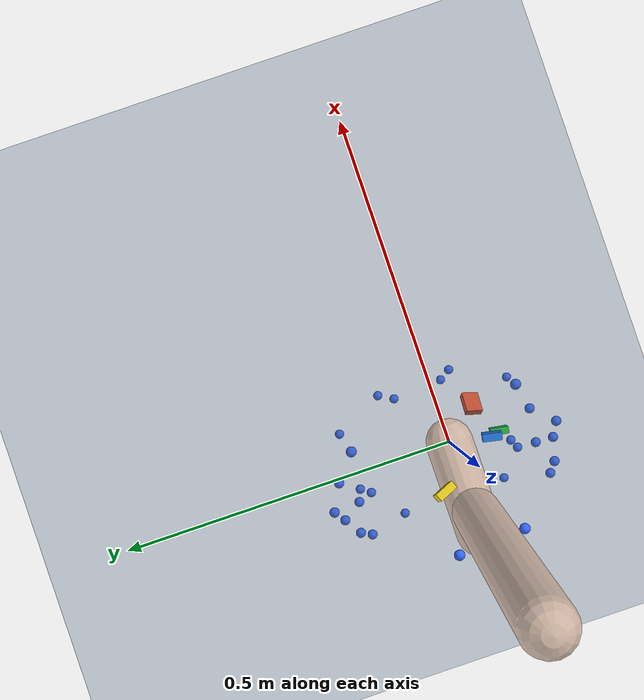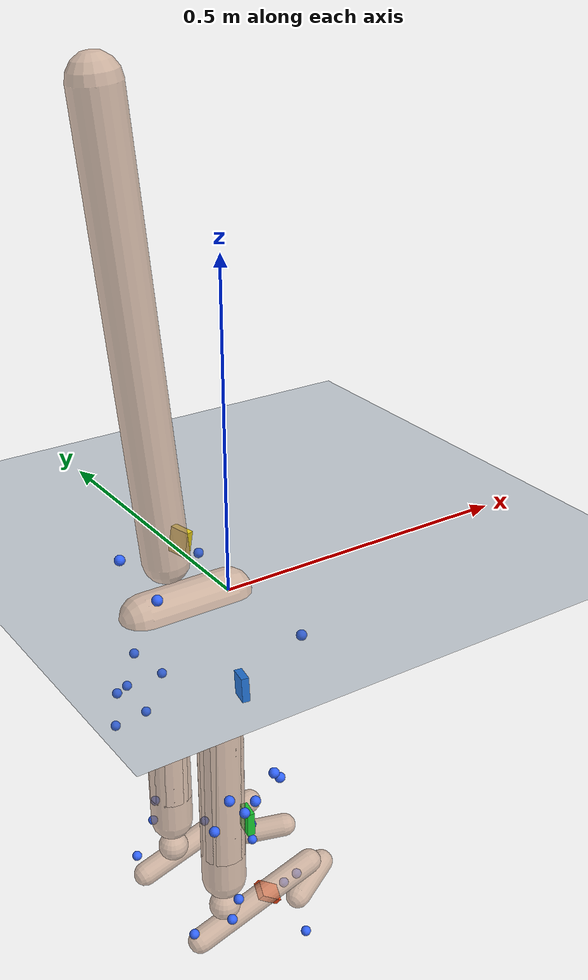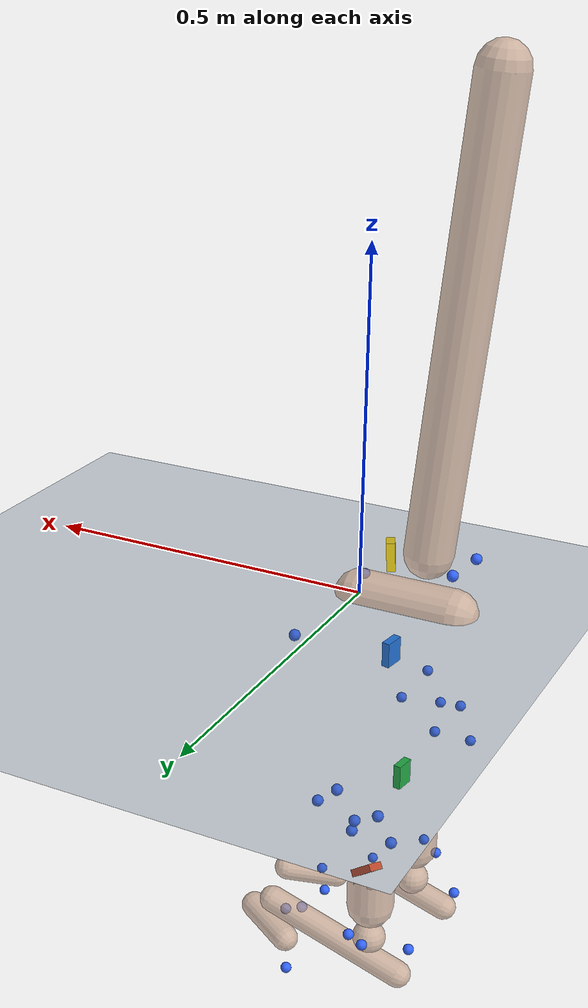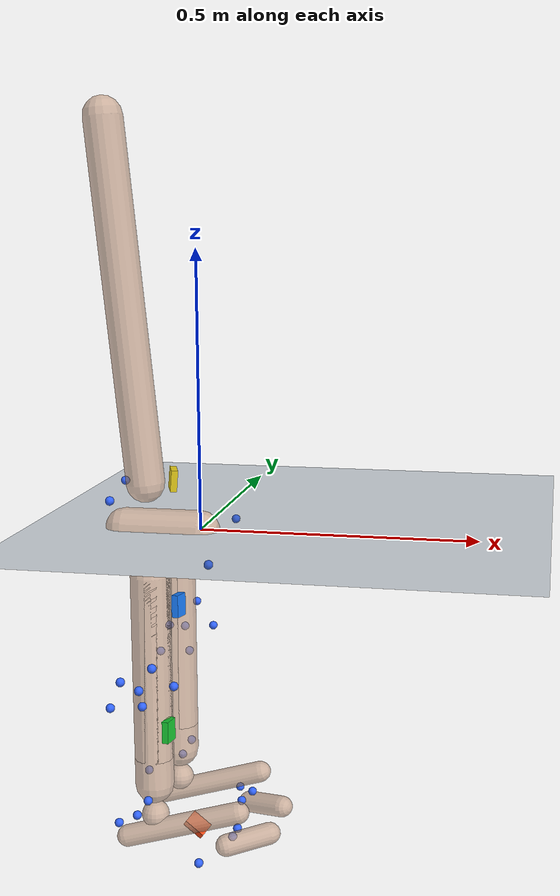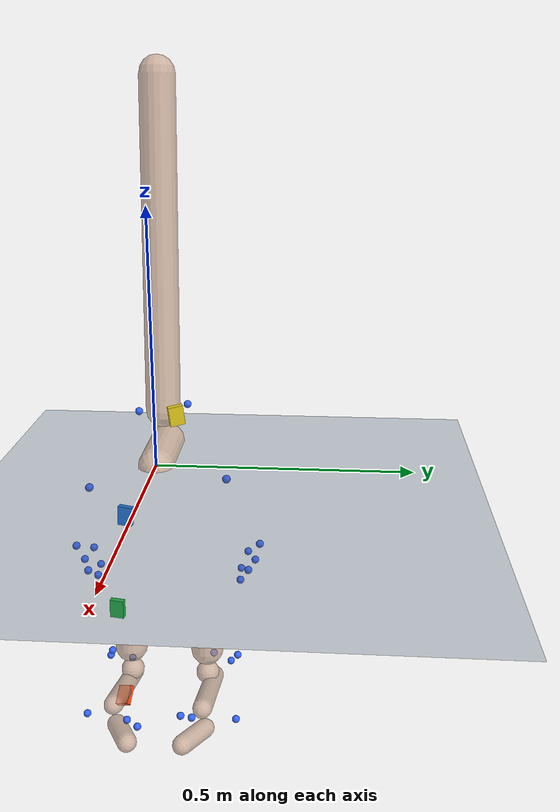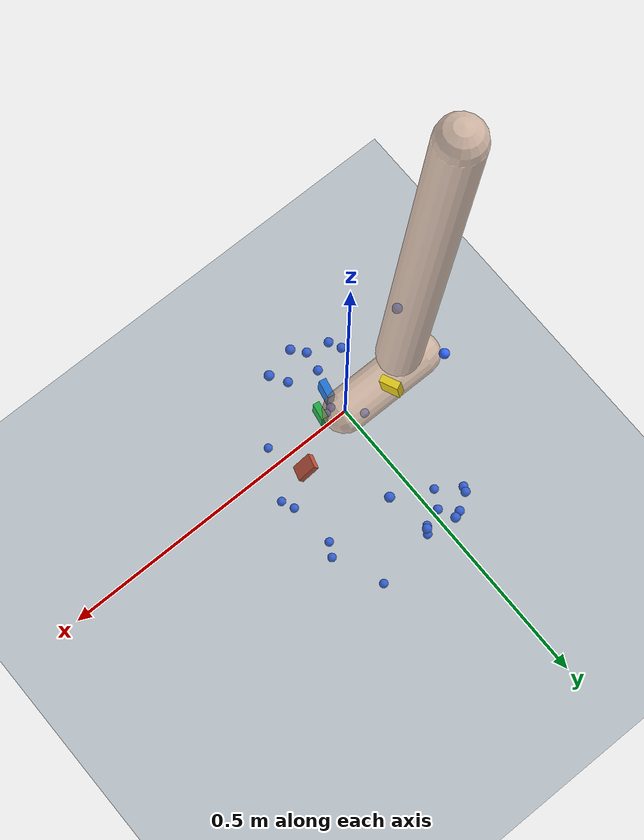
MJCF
<mujoco model="AB30">
  <compiler angle="radian" autolimits="true"/>
  <option timestep="0.005" gravity="0 0 -9.81"><flag contact="disable"/></option>
  <visual><global offwidth="1280" offheight="720"/></visual>
  <default><joint limited="false" damping="0"/><geom contype="0" conaffinity="0"/></default>
  <asset>
    <texture name="grid" type="2d" builtin="checker" rgb1="0.2 0.3 0.4" rgb2="0.3 0.4 0.5" width="512" height="512"/>
    <material name="grid" texture="grid" texrepeat="2 2" texuniform="true"/>
    <material name="skin" rgba="0.8 0.65 0.55 0.7"/>
  </asset>
  <worldbody>
    <light pos="0 0 4" dir="0 0 -1"/>
    <geom name="floor" type="plane" size="0 0 0.05" material="grid"/>
    <body name="pelvis" pos="0 0 0" quat="1 0 0 0">
      <joint name="pelvis_tx" type="slide" axis="1 0 0"/>
      <joint name="pelvis_ty" type="slide" axis="0 0 1"/>
      <joint name="pelvis_tz" type="slide" axis="0 -1 0"/>
      <joint name="pelvis_tilt" type="hinge" axis="0 -1 0"/>
      <joint name="pelvis_list" type="hinge" axis="1 0 0"/>
      <joint name="pelvis_rotation" type="hinge" axis="0 0 1"/>
      <inertial pos="-0.0707 0 0" mass="12.3721" diaginertia="0.12372142 0.12372142 0.12372142"/>
      <geom type="capsule" fromto="0 0 0 -0.1414 0 0" size="0.035" material="skin" mass="0"/>
      <site name="m_R_ASIS" pos="0.046712862 -0.12312792 -0.030536669" size="0.008" rgba="0.2 0.4 1 1" group="2"/>
      <site name="m_L_ASIS" pos="0.03146868 0.14170139 -0.011381091" size="0.008" rgba="0.2 0.4 1 1" group="2"/>
      <site name="m_L_PSIS" pos="-0.15218441 0.041935811 0.076667518" size="0.008" rgba="0.2 0.4 1 1" group="2"/>
      <site name="m_R_PSIS" pos="-0.14857951 -0.059881004 0.059781953" size="0.008" rgba="0.2 0.4 1 1" group="2"/>
      <body name="femur_r" pos="-0.0707 -0.0835 -0.0661" quat="1 0 0 0">
        <joint name="hip_flexion_r" type="hinge" axis="0 -1 0"/>
        <joint name="hip_adduction_r" type="hinge" axis="1 0 0"/>
        <joint name="hip_rotation_r" type="hinge" axis="0 0 1"/>
        <inertial pos="0 0 -0.17" mass="9.77144" diaginertia="0.097714393 0.097714393 0.097714393"/>
        <geom type="capsule" fromto="0 0 0 0 0 -0.34" size="0.035" material="skin" mass="0"/>
        <site name="m_R_Thigh_Upper" pos="0.030761534 -0.098886588 -0.13628925" size="0.008" rgba="0.2 0.4 1 1" group="2"/>
        <site name="m_R_Thigh_Front" pos="0.060171748 -0.06926147 -0.17684685" size="0.008" rgba="0.2 0.4 1 1" group="2"/>
        <site name="m_R_Thigh_Rear" pos="0.0036993026 -0.090592458 -0.18130729" size="0.008" rgba="0.2 0.4 1 1" group="2"/>
        <site name="m_R_Knee_Lat" pos="0.0002000624 -0.043292933 -0.40644097" size="0.008" rgba="0.2 0.4 1 1" group="2"/>
        <site name="imu_thigh" type="box" size="0.02 0.015 0.006" pos="0.04775006 0.012329851 -0.055042056" quat="0.71110272 0.050063465 0.6956812 -0.088624175" rgba="0.1 0.5 1 1" group="1"/>
        <body name="tibia_r" pos="0 0 0" quat="1 0 0 0">
          <joint name="knee_r_translation1" type="slide" axis="1 0 0"/>
          <joint name="knee_r_translation2" type="slide" axis="0 0 1"/>
          <joint name="knee_angle_r" type="hinge" axis="0 -1 0"/>
          <inertial pos="0 0 -0.19577681" mass="3.89486" diaginertia="0.038948557 0.038948557 0.038948557"/>
          <geom type="capsule" fromto="0 0 0 0 0 -0.39155361" size="0.035" material="skin" mass="0"/>
          <site name="m_R_Shank_Upper" pos="-0.033159791 -0.079262648 -0.17212852" size="0.008" rgba="0.2 0.4 1 1" group="2"/>
          <site name="m_R_Shank_Front" pos="0.00092680898 -0.065033063 -0.21977186" size="0.008" rgba="0.2 0.4 1 1" group="2"/>
          <site name="m_R_Shank_Rear" pos="-0.055186661 -0.072050182 -0.22379491" size="0.008" rgba="0.2 0.4 1 1" group="2"/>
          <site name="m_R_Ankle_Lat" pos="-0.017839197 -0.052541528 -0.43133711" size="0.008" rgba="0.2 0.4 1 1" group="2"/>
          <site name="imu_shank" type="box" size="0.02 0.015 0.006" pos="0.033602821 -0.018821436 -0.2795008" quat="0.70515389 0.051755523 0.70448177 -0.061520693" rgba="0.1 0.8 0.2 1" group="1"/>
          <body name="talus_r" pos="0 0 -0.45090534" quat="1 0 0 0">
            <joint name="ankle_angle_r" type="hinge" axis="-0.10501355 -0.97912632 -0.17402245"/>
            <inertial pos="0 0 0" mass="0.105053" diaginertia="0.0010505342 0.0010505342 0.0010505342"/>
            <geom type="sphere" size="0.025" material="skin" mass="0"/>
            <body name="calcn_r" pos="-0.051141054 -0.0083050471 -0.043989486" quat="1 0 0 0">
              <joint name="subtalar_angle_r" type="hinge" axis="0.78717961 0.12094949 0.60474746"/>
              <inertial pos="0.10399086 0 0.031197258" mass="1.31317" diaginertia="0.013131678 0.013131678 0.013131678"/>
              <geom type="capsule" fromto="0 0 0 0.20798172 0 0.062394515" size="0.02" material="skin" mass="0"/>
              <site name="m_R_Heel" pos="-0.014105342 -0.0067194464 0.027278913" size="0.008" rgba="0.2 0.4 1 1" group="2"/>
              <site name="m_R_Toe_Lat" pos="0.15321511 -0.072248062 -0.003775864" size="0.008" rgba="0.2 0.4 1 1" group="2"/>
              <site name="m_R_Toe_Med" pos="0.18667541 0.042175989 -0.0060486066" size="0.008" rgba="0.2 0.4 1 1" group="2"/>
              <site name="m_R_Toe_Tip" pos="0.20039661 0.024266781 0.020474921" size="0.008" rgba="0.2 0.4 1 1" group="2"/>
              <site name="imu_foot" type="box" size="0.02 0.015 0.006" pos="0.13052262 0.0057519318 0.030065793" quat="0.93186236 0.18067041 0.29882786 -0.098451263" rgba="1 0.3 0.1 1" group="1"/>
              <body name="toes_r" pos="0.18593566 -0.0011231013 -0.0020798172" quat="1 0 0 0">
                <joint name="mtp_angle_r" type="hinge" axis="-0.5809544 -0.81393611 0"/>
                <inertial pos="0.035980837 0.0181984 0.0062394515" mass="0.227546" diaginertia="0.0022754572 0.0022754572 0.0022754572"/>
                <geom type="capsule" fromto="0 0 0 0.071961675 0.036396801 0.012478903" size="0.02" material="skin" mass="0"/>
              </body>
            </body>
          </body>
        </body>
      </body>
      <body name="femur_l" pos="-0.0707 0.0835 -0.0661" quat="1 0 0 0">
        <joint name="hip_flexion_l" type="hinge" axis="0 -1 0"/>
        <joint name="hip_adduction_l" type="hinge" axis="-1 0 0"/>
        <joint name="hip_rotation_l" type="hinge" axis="0 0 -1"/>
        <inertial pos="0 0 -0.17" mass="9.77144" diaginertia="0.097714393 0.097714393 0.097714393"/>
        <geom type="capsule" fromto="0 0 0 0 0 -0.34" size="0.035" material="skin" mass="0"/>
        <site name="m_L_Thigh_Upper" pos="0.0068387013 0.11548014 -0.13000726" size="0.008" rgba="0.2 0.4 1 1" group="2"/>
        <site name="m_L_Thigh_Front" pos="0.04483999 0.09444431 -0.17120481" size="0.008" rgba="0.2 0.4 1 1" group="2"/>
        <site name="m_L_Thigh_Rear" pos="-0.0155101 0.10427204 -0.17902109" size="0.008" rgba="0.2 0.4 1 1" group="2"/>
        <site name="m_L_Knee_Lat" pos="0.0039835074 0.066972701 -0.40264267" size="0.008" rgba="0.2 0.4 1 1" group="2"/>
        <body name="tibia_l" pos="0 0 0" quat="1 0 0 0">
          <joint name="knee_l_translation1" type="slide" axis="1 0 0"/>
          <joint name="knee_l_translation2" type="slide" axis="0 0 1"/>
          <joint name="knee_angle_l" type="hinge" axis="0 -1 0"/>
          <inertial pos="0 0 -0.19577681" mass="3.89486" diaginertia="0.038948557 0.038948557 0.038948557"/>
          <geom type="capsule" fromto="0 0 0 0 0 -0.39155361" size="0.035" material="skin" mass="0"/>
          <site name="m_L_Shank_Upper" pos="-0.042228174 0.086801314 -0.17376631" size="0.008" rgba="0.2 0.4 1 1" group="2"/>
          <site name="m_L_Shank_Front" pos="0.0012672208 0.073761565 -0.218979" size="0.008" rgba="0.2 0.4 1 1" group="2"/>
          <site name="m_L_Shank_Rear" pos="-0.056543795 0.070469698 -0.22240361" size="0.008" rgba="0.2 0.4 1 1" group="2"/>
          <site name="m_L_Ankle_Lat" pos="-0.010193453 0.05078012 -0.427474" size="0.008" rgba="0.2 0.4 1 1" group="2"/>
          <body name="talus_l" pos="0 0 -0.45090534" quat="1 0 0 0">
            <joint name="ankle_angle_l" type="hinge" axis="0.10501355 -0.97912632 0.17402245"/>
            <inertial pos="0 0 0" mass="0.105053" diaginertia="0.0010505342 0.0010505342 0.0010505342"/>
            <geom type="sphere" size="0.025" material="skin" mass="0"/>
            <body name="calcn_l" pos="-0.051141054 0.0083050471 -0.043989486" quat="1 0 0 0">
              <joint name="subtalar_angle_l" type="hinge" axis="-0.78717961 0.12094949 -0.60474746"/>
              <inertial pos="0.10399086 0 0.031197258" mass="1.31317" diaginertia="0.013131678 0.013131678 0.013131678"/>
              <geom type="capsule" fromto="0 0 0 0.20798172 0 0.062394515" size="0.02" material="skin" mass="0"/>
              <site name="m_L_Heel" pos="-0.014664143 -0.0025343246 0.048748975" size="0.008" rgba="0.2 0.4 1 1" group="2"/>
              <site name="m_L_Toe_Lat" pos="0.15241679 0.06327455 -0.0017459459" size="0.008" rgba="0.2 0.4 1 1" group="2"/>
              <site name="m_L_Toe_Med" pos="0.18251192 -0.049806079 0.023037706" size="0.008" rgba="0.2 0.4 1 1" group="2"/>
              <site name="m_L_Toe_Tip" pos="0.19764677 -0.024040522 0.031379483" size="0.008" rgba="0.2 0.4 1 1" group="2"/>
              <body name="toes_l" pos="0.18593566 0.0011231013 -0.0020798172" quat="1 0 0 0">
                <joint name="mtp_angle_l" type="hinge" axis="0.5809544 -0.81393611 0"/>
                <inertial pos="0.035980837 -0.0181984 0.0062394515" mass="0.227546" diaginertia="0.0022754572 0.0022754572 0.0022754572"/>
                <geom type="capsule" fromto="0 0 0 0.071961675 -0.036396801 0.012478903" size="0.02" material="skin" mass="0"/>
              </body>
            </body>
          </body>
        </body>
      </body>
      <body name="torso" pos="-0.1007 0 0.0815" quat="1 0 0 0">
        <joint name="lumbar_extension" type="hinge" axis="0 -1 0"/>
        <joint name="lumbar_bending" type="hinge" axis="1 0 0"/>
        <joint name="lumbar_rotation" type="hinge" axis="0 0 1"/>
        <inertial pos="-0.03 0 0.32" mass="35.9667" diaginertia="0.35966721 0.35966721 0.35966721"/>
        <geom type="capsule" fromto="0 0 0 -0.06 0 0.64" size="0.035" material="skin" mass="0"/>
        <site name="imu_trunk" type="box" size="0.02 0.015 0.006" pos="0.042147208 0.032803941 0.0028686948" quat="0.66157919 -0.096415417 0.72213736 0.17758006" rgba="0.9 0.8 0.1 1" group="1"/>
      </body>
    </body>
  </worldbody>
  <sensor>
<accelerometer name="imu_foot_acc" site="imu_foot"/>
<gyro name="imu_foot_gyr" site="imu_foot"/>
<accelerometer name="imu_shank_acc" site="imu_shank"/>
<gyro name="imu_shank_gyr" site="imu_shank"/>
<accelerometer name="imu_thigh_acc" site="imu_thigh"/>
<gyro name="imu_thigh_gyr" site="imu_thigh"/>
<accelerometer name="imu_trunk_acc" site="imu_trunk"/>
<gyro name="imu_trunk_gyr" site="imu_trunk"/>
</sensor>
</mujoco>
